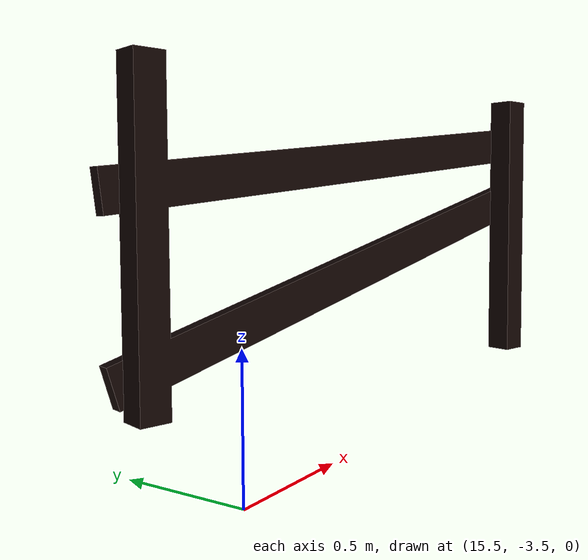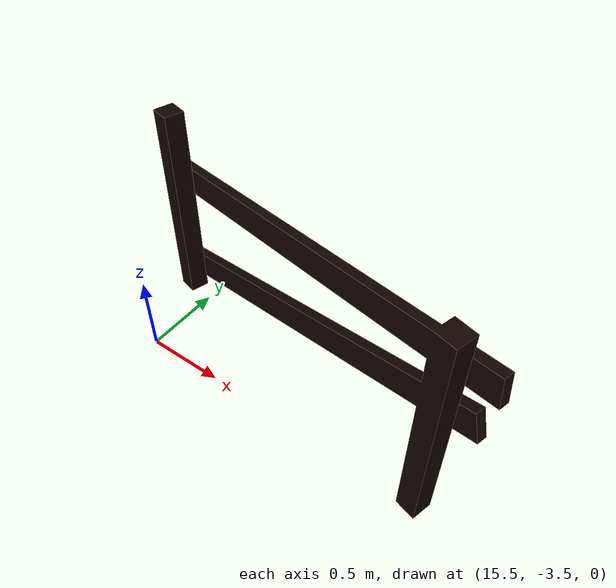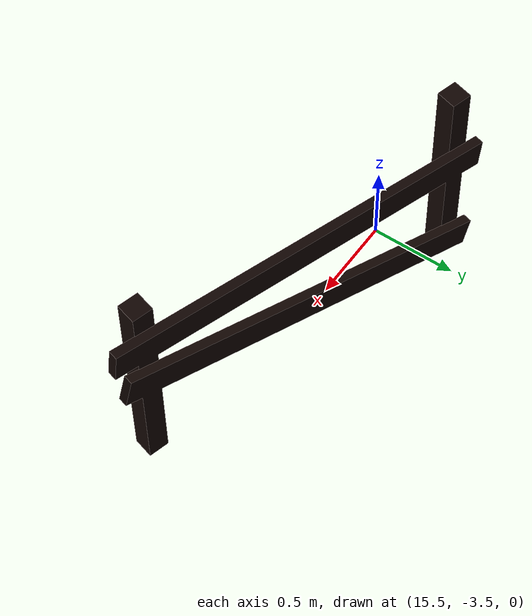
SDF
<sdf version="1.7">
<model name="fence_1">
    <static>true</static>
    <link name="fence_1">
        <pose>0 0 0 0 0 0</pose>
        <collision name="fence_1_collision">
            <geometry>
                <mesh>
                    <uri>model://fence_1/meshes/fence_1.dae</uri>
                </mesh>
            </geometry>
        </collision>
        <visual name="fence_1_visual">
            <geometry>
                <mesh>
                    <uri>model://fence_1/meshes/fence_1.dae</uri>
                </mesh>
            </geometry>
        </visual>
    </link>
</model>
</sdf>
